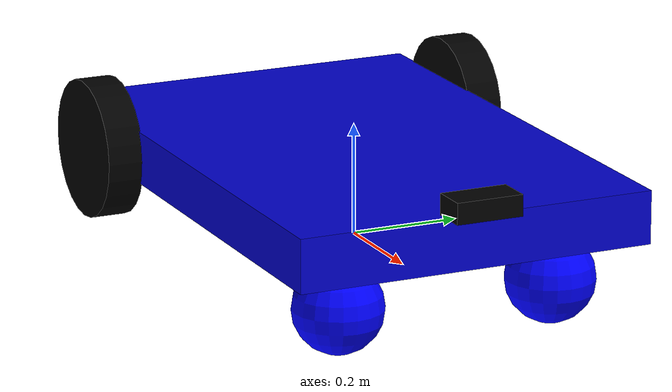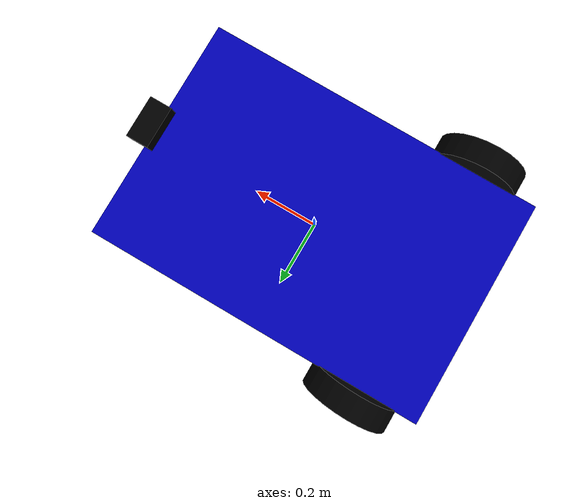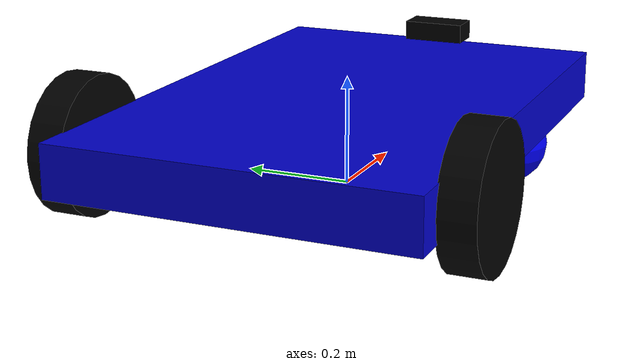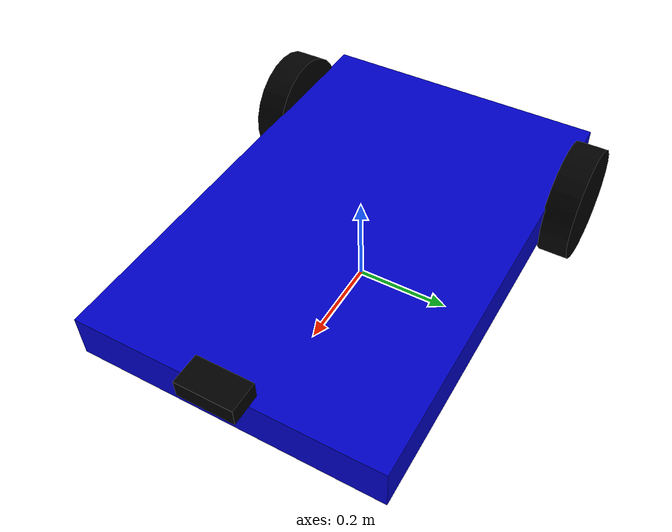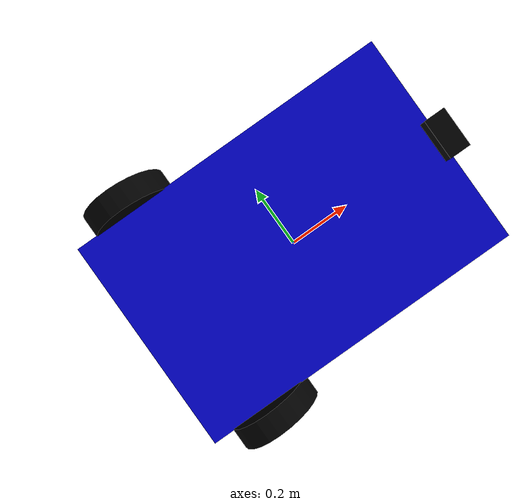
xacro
<?xml version="1.0" encoding="UTF-8"?>
<robot name="full_robot">
    <material name="Blue">
    <color rgba="0 0 0.8 1"/>
  </material>
  <material name="Black">
    <color rgba="0 0 0 1"/>
  </material>
  <material name="White">
    <color rgba="1 1 1 1"/>
  </material>

<link name="base_footprint" />

  <link name="base_link">
    <visual>
      <geometry>
        <box size="0.984 0.65 0.095"/>
      </geometry>
      <origin rpy="0 0 0" xyz="0 0 0.125"/>
      <material name="Blue"/>
    </visual>
    <collision>
      <origin rpy="0 3.14 0" xyz="0 0 0"/>
       <geometry>
          <box size="0.984 0.65 0.095"/>
        </geometry>
       </collision>
        <inertial>
            <mass value="0.1" />
            <origin xyz="0 0 0" rpy="0 0 0" />
            <inertia ixx="0.03" iyy="0.03" izz="0.03" ixy="0.0" ixz="0.0" iyz="0.0" />
        </inertial>
  </link>

  <joint name="base_footprint_to_base_link" type="fixed">
    <parent link="base_footprint"/>
    <child link="base_link"/>
    <origin rpy="0 0 0" xyz="0 0 0"/>
  </joint>

  <link name="right_wheel">
    <visual>
      <geometry>
        <cylinder length="0.065" radius="0.125"/>
      </geometry>
      <origin rpy="1.5707 0 0" xyz="0 0 0"/>
      <material name="Black"/>
    </visual>
    <collision>
      <geometry>
        <cylinder length="0.065" radius="0.125"/>
      </geometry>
    </collision>
    <inertial>
       <mass value="0.1" />
       <origin xyz="0 0 0" rpy="0 0 0" />
       <inertia ixx="0.03" iyy="0.03" izz="0.03" ixy="0.0" ixz="0.0" iyz="0.0" />
    </inertial>
  </link>

  <link name="left_wheel">
    <visual>
      <geometry>
        <cylinder length="0.065" radius="0.125"/>
      </geometry>
      <origin rpy="1.5707 0 0" xyz="0 0 0"/>
      <material name="Black"/>
    </visual>
    <collision>
      <geometry>
        <cylinder length="0.065" radius="0.125"/>
      </geometry>
    </collision>
    <inertial>
       <mass value="0.1" />
       <origin xyz="0 0 0" rpy="0 0 0" />
       <inertia ixx="0.03" iyy="0.03" izz="0.03" ixy="0.0" ixz="0.0" iyz="0.0" />
    </inertial>
  </link>

  <link name="caster_wheel_right">
    <visual>
      <origin rpy="0 0 0" xyz="0 0 0" />
            <geometry>
                <sphere radius="0.08" />
            </geometry>
            <material name="blue">
                <color rgba="0 0 1 1" />
            </material>
        </visual>
        <collision>
            <origin rpy="0 0 0" xyz="0 0 0" />
            <geometry>
                <sphere radius="0.08" />
            </geometry>
            <material name="blue" />
            <color rgba="0 0 1 1" />
        </collision>
        <inertial>
            <mass value="0.1" />
            <origin xyz="0 0 0" rpy="0 0 0" />
            <inertia ixx="0.03" iyy="0.03" izz="0.03" ixy="0.0" ixz="0.0" iyz="0.0" />
        </inertial>
  </link>

    <link name="caster_wheel_left">
    <visual>
      <origin rpy="0 0 0" xyz="0 0 0" />
            <geometry>
                <sphere radius="0.08" />
            </geometry>
            <material name="blue">
                <color rgba="0 0 1 1" />
            </material>
        </visual>
        <collision>
            <origin rpy="0 0 0" xyz="0 0 0" />
            <geometry>
                <sphere radius="0.08" />
            </geometry>
            <material name="blue" />
            <color rgba="0 0 1 1" />
        </collision>
        <inertial>
            <mass value="0.1" />
            <origin xyz="0 0 0" rpy="0 0 0" />
            <inertia ixx="0.03" iyy="0.03" izz="0.03" ixy="0.0" ixz="0.0" iyz="0.0" />
        </inertial>

  </link>

  <joint name="wheel_0_joint" type="continuous">
    <parent link="base_link"/>
    <child link="right_wheel"/>
    <axis xyz="0 -1 0"/>
    <origin xyz="-0.315 0.355 0.12"/>
  </joint>

  <joint name="wheel_1_joint" type="continuous">
    <parent link="base_link"/>
    <child link="left_wheel"/>
    <axis xyz="0 -1 0"/>
    <origin xyz="-0.315 -0.355 0.12"/>
  </joint>

  <joint name="base_link_to_caster_wheel_right" type="continuous">
    <parent link="base_link"/>
    <child link="caster_wheel_right"/>
    <axis xyz="0 0 0"/>
    <origin rpy="0 0 0" xyz="0.367135 0.2 0"/>
  </joint>

  <joint name="base_link_to_caster_wheel_left" type="continuous">
    <parent link="base_link"/>
    <child link="caster_wheel_left"/>
    <axis xyz="1 1 1"/>
    <origin rpy="0 0 0" xyz="0.367135 -0.2 0.0"/>
  </joint>

  <link name="kinect_link">
  <visual>
    <geometry>
      <box size="0.064 0.121 0.0381" />
    </geometry>
    <material name="Black" />
  </visual>
  <collision>
    <geometry>
      <box size="0.064 0.121 0.0381" />
    </geometry>
    <material name="Black" />
  </collision>
   <inertial>
      <mass value="0.0001" />
      <origin xyz="0 0 0" />
      <inertia ixx="0.0001" ixy="0.0" ixz="0.0"
               iyy="0.0001" iyz="0.0"
               izz="0.0001" />
  </inertial>
</link>

<joint name="kinect_depth_joint" type="fixed">
  <origin xyz="0 0.028 0" rpy="0 0 0" />
  <parent link="kinect_link" />
  <child link="kinect_depth_frame" />
</joint>

<link name="kinect_depth_frame">
  <inertial>
      <mass value="0.0001" />
      <origin xyz="0 0 0" />
      <inertia ixx="0.0001" ixy="0.0" ixz="0.0"
               iyy="0.0001" iyz="0.0"
               izz="0.0001" />
  </inertial>
</link>

<joint name="depth_optical_joint" type="fixed">
  <origin xyz="0 0 0" rpy="0 0 0" />
  <parent link="kinect_depth_frame" />
  <child link="kinect_depth_optical_frame" />
</joint>

<link name="kinect_depth_optical_frame">
  <inertial>
      <mass value="0.0001" />
      <origin xyz="0 0 0" />
      <inertia ixx="0.0001" ixy="0.0" ixz="0.0"
               iyy="0.0001" iyz="0.0"
               izz="0.0001" />
  </inertial>
</link>

<joint name="base_link_to_kinect_link" type="fixed">
    <parent link="base_link"/>
    <child link="kinect_link"/>
    <origin rpy="0 0 0" xyz="0.5 0 0.19155"/>
  </joint>

</robot>
